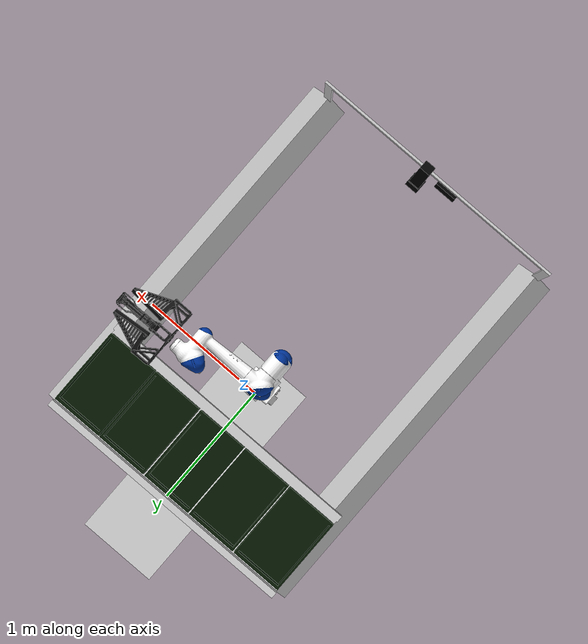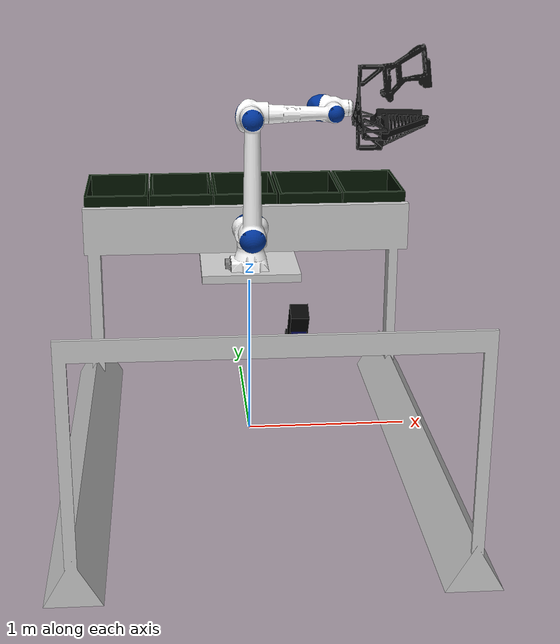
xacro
<?xml version="1.0" ?>
<robot name="test_stand" xmlns:xacro="http://ros.org/wiki/xacro">
  <xacro:include filename="$(find test_stand)/urdf/test_stand_macro.xacro" />
  <xacro:include filename="$(find yaskawa_hc10)/urdf/hc10_macro.xacro" />
  <xacro:include filename="$(find gripper)/urdf/gripper_macro.xacro" />
  <xacro:include filename="$(find depth_camera)/urdf/depth_camera_macro.xacro" />
  <xacro:include filename="$(find daheng_camera)/urdf/daheng_macro.xacro" />

  <!-- Joint controller -->
  <gazebo>
		<plugin name="gazebo_ros_control" filename="libgazebo_ros_control.so"/>
  </gazebo>

  <xacro:test_stand prefix=""/>
  <link name="world"/>
  <joint name="stand_fixed" type="fixed">
    <parent link="world"/>
    <child link="test_stand_link"/>
  </joint>

  <xacro:motoman_hc10 prefix=""/>
  <joint name="robot_fixed" type="fixed">
    <parent link="robot_base_link"/>
    <child link="base_link"/>
    <origin xyz="0 -0.7 0" rpy="0 0 0" />
  </joint>

  <xacro:gripper prefix=""/>
  <joint name="gripper_top_fixed" type="fixed">
    <parent link="link_6_t"/>
    <child link="frame_top_link"/>
    <origin xyz="0 0 -0.16" rpy="0 0 0" />
  </joint>

  <xacro:depth_camera prefix=""/>
  <joint name="camera_fixed" type="fixed">
    <parent link="test_stand_link"/>
    <child link="depth_camera_link"/>
    <origin xyz="-0.1 -1.95 1.35" rpy="3.1415 2.2 -1.5708" />
  </joint>

  <xacro:daheng/>
  <joint name="daheng_camera_fixed" type="fixed">
    <parent link="test_stand_link"/>
    <child link="daheng_camera_link"/>
    <origin xyz="0.1 -1.95 1.36" rpy="1 0 3.1415" />
  </joint>

</robot>

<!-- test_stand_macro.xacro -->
<robot xmlns:xacro="http://ros.org/wiki/xacro">
  <xacro:macro name="test_stand" params="prefix">
    <xacro:include filename="$(find test_stand)/urdf/test_stand.gazebo" />

    <!-- link list -->
    <link name="${prefix}test_stand_link">
      <visual>
        <geometry>
          <mesh filename="package://test_stand/meshes/test_stand.dae"/>
        </geometry>
      </visual>
      <collision>
        <geometry>
          <mesh filename="package://test_stand/meshes/test_stand.dae"/>
        </geometry>
      </collision>
      <inertial>
        <mass value="100" />
        <origin xyz="0 0 0" rpy="0 0 0"/>
        <inertia
        ixx="1.0" ixy="0.0" ixz="0.0"
        iyy="1.0" iyz="0.0"
        izz="1.0"/>
      </inertial>
    </link>
    <link name="${prefix}robot_base_link">
      <visual>
        <geometry>
          <mesh filename="package://test_stand/meshes/robot_base.dae"/>
        </geometry>
      </visual>
      <collision>
        <geometry>
          <mesh filename="package://test_stand/meshes/robot_base.dae"/>
        </geometry>
      </collision>
      <inertial>
        <mass value="1" />
        <origin xyz="0 0 0" rpy="0 0 0"/>
        <inertia
        ixx="1.0" ixy="0.0" ixz="0.0"
        iyy="1.0" iyz="0.0"
        izz="1.0"/>
      </inertial>
    </link>
    <!-- end of link list -->

    <xacro:property name="joint_d" value="1" />
    <xacro:property name="joint_eff" value="1000" />
    <xacro:property name="joint_vel" value="20" />
    <xacro:property name="joint_f" value="10" />

    <!-- joint list -->
    <joint name="${prefix}robot_base_joint" type="prismatic">
      <parent link="${prefix}test_stand_link"/>
      <child link="${prefix}robot_base_link"/>
      <origin xyz="0 0.61995 1.0791" rpy="0 0 0" />
      <axis xyz="1 0 0" />
      <limit lower="-0.733" upper="0.733" effort="${joint_eff}" velocity="${joint_vel}"/>
      <dynamics damping="${joint_d}" friction="${joint_f}" />
    </joint>
    <!-- end of joint list -->

    <!-- joint controller list -->
    <xacro:simple_transmission name="${prefix}robot_base_joint" interface="hardware_interface/EffortJointInterface" />
    <!-- end of joint controller list -->

  </xacro:macro>
</robot>

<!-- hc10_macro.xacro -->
<robot xmlns:xacro="http://ros.org/wiki/xacro">
  <xacro:macro name="motoman_hc10" params="prefix">
    <xacro:include filename="$(find yaskawa_hc10)/urdf/common_materials.xacro"/>
    <xacro:include filename="$(find yaskawa_hc10)/urdf/hc10.gazebo" />

    <!-- link list -->
    <link name="${prefix}base_link">
      <visual>
        <geometry>
          <mesh filename="package://motoman_hc10_support/meshes/hc10/visual/base_link.dae"/>
        </geometry>
        <xacro:material_yaskawa_blue/>
      </visual>
      <collision>
        <geometry>
          <mesh filename="package://motoman_hc10_support/meshes/hc10/collision/base_link.stl"/>
        </geometry>
      </collision>
      <inertial>
        <mass value="8" />
        <origin xyz="0 0 0" rpy="0 0 0"/>
        <inertia
        ixx="1.0" ixy="0.0" ixz="0.0"
        iyy="1.0" iyz="0.0"
        izz="1.0"/>
      </inertial>
    </link>
    <link name="${prefix}link_1_s">
      <visual>
        <geometry>
          <mesh filename="package://motoman_hc10_support/meshes/hc10/visual/link_1_s.dae"/>
        </geometry>
        <xacro:material_yaskawa_blue/>
      </visual>
      <collision>
        <geometry>
          <mesh filename="package://motoman_hc10_support/meshes/hc10/collision/link_1_s.stl"/>
        </geometry>
      </collision>
      <inertial>
        <mass value="14" />
        <origin xyz="0 0 0" rpy="0 0 0"/>
        <inertia
        ixx="1.0" ixy="0.0" ixz="0.0"
        iyy="1.0" iyz="0.0"
        izz="1.0"/>
      </inertial>
    </link>
    <link name="${prefix}link_2_l">
      <visual>
        <geometry>
          <mesh filename="package://motoman_hc10_support/meshes/hc10/visual/link_2_l.dae"/>
        </geometry>
        <xacro:material_yaskawa_blue/>
      </visual>
      <collision>
        <geometry>
          <mesh filename="package://motoman_hc10_support/meshes/hc10/collision/link_2_l.stl"/>
        </geometry>
      </collision>
      <inertial>
        <mass value="15" />
        <origin xyz="0 0 0" rpy="0 0 0"/>
        <inertia
        ixx="1.0" ixy="0.0" ixz="0.0"
        iyy="1.0" iyz="0.0"
        izz="1.0"/>
      </inertial>
    </link>
    <link name="${prefix}link_3_u">
      <visual>
        <geometry>
          <mesh filename="package://motoman_hc10_support/meshes/hc10/visual/link_3_u.dae"/>
        </geometry>
        <xacro:material_yaskawa_blue/>
      </visual>
      <collision>
        <geometry>
          <mesh filename="package://motoman_hc10_support/meshes/hc10/collision/link_3_u.stl"/>
        </geometry>
      </collision>
      <inertial>
        <mass value="8" />
        <origin xyz="0 0 0" rpy="0 0 0"/>
        <inertia
        ixx="1.0" ixy="0.0" ixz="0.0"
        iyy="1.0" iyz="0.0"
        izz="1.0"/>
      </inertial>
    </link>
    <link name="${prefix}link_4_r">
      <visual>
        <geometry>
          <mesh filename="package://motoman_hc10_support/meshes/hc10/visual/link_4_r.dae"/>
        </geometry>
        <xacro:material_yaskawa_blue/>
      </visual>
      <collision>
        <geometry>
          <mesh filename="package://motoman_hc10_support/meshes/hc10/collision/link_4_r.stl"/>
        </geometry>
      </collision>
      <inertial>
        <mass value="5" />
        <origin xyz="0 0 0" rpy="0 0 0"/>
        <inertia
        ixx="1.0" ixy="0.0" ixz="0.0"
        iyy="1.0" iyz="0.0"
        izz="1.0"/>
      </inertial>
    </link>
    <link name="${prefix}link_5_b">
      <visual>
        <geometry>
          <mesh filename="package://motoman_hc10_support/meshes/hc10/visual/link_5_b.dae"/>
        </geometry>
        <xacro:material_yaskawa_blue/>
      </visual>
      <collision>
        <geometry>
          <mesh filename="package://motoman_hc10_support/meshes/hc10/collision/link_5_b.stl"/>
        </geometry>
      </collision>
      <inertial>
        <mass value="6" />
        <origin xyz="0 0 0" rpy="0 0 0"/>
        <inertia
        ixx="1.0" ixy="0.0" ixz="0.0"
        iyy="1.0" iyz="0.0"
        izz="1.0"/>
      </inertial>
    </link>
    <link name="${prefix}link_6_t">
      <visual>
        <geometry>
          <mesh filename="package://motoman_hc10_support/meshes/hc10dt/visual/link_6_t.dae"/>
        </geometry>
        <xacro:material_yaskawa_blue/>
      </visual>
      <collision>
        <geometry>
          <mesh filename="package://motoman_hc10_support/meshes/hc10dt/collision/link_6_t.stl"/>
       </geometry>
      </collision>
      <inertial>
        <mass value="2" />
        <origin xyz="0 0 0" rpy="0 0 0"/>
        <inertia
        ixx="1.0" ixy="0.0" ixz="0.0"
        iyy="1.0" iyz="0.0"
        izz="1.0"/>
      </inertial>
    </link>
    <!-- end of link list -->

    <xacro:property name="joint_d" value="1" />
    <xacro:property name="joint_eff" value="10000000" />
    <xacro:property name="joint_vel" value="20" />
    <xacro:property name="joint_f" value="100" />

    <!-- joint list -->
    <joint name="${prefix}joint_1_s" type="revolute">
      <parent link="${prefix}base_link"/>
      <child link="${prefix}link_1_s"/>
      <origin xyz="0 0 0.275" rpy="0 0 0" />
      <axis xyz="0 0 1" />
      <limit lower="${radians(-180)}" upper="${radians(180)}" effort="${joint_eff}" velocity="${radians(130)}"/>
      <dynamics damping="0" friction="0" />
    </joint>
    <joint name="${prefix}joint_2_l" type="revolute">
      <parent link="${prefix}link_1_s"/>
      <child link="${prefix}link_2_l"/>
      <origin xyz="0 0 0" rpy="0 0 0" />
      <axis xyz="0 1 0" />
      <limit lower="${radians(-180)}" upper="${radians(180)}" effort="${joint_eff}" velocity="${radians(130)}"/>
      <dynamics damping="${joint_d}" friction="${joint_f}" />
    </joint>
    <joint name="${prefix}joint_3_u" type="revolute">
      <parent link="${prefix}link_2_l"/>
      <child link="${prefix}link_3_u"/>
      <origin xyz="0 0 0.700" rpy="0 ${radians(-90)} 0" />
      <axis xyz="0 -1 0" />
      <limit lower="${radians(-180)}" upper="${radians(180)}" effort="${joint_eff}" velocity="${radians(180)}"/>
      <dynamics damping="${joint_d}" friction="${joint_f}" />
    </joint>
    <joint name="${prefix}joint_4_r" type="revolute">
      <parent link="${prefix}link_3_u"/>
      <child link="${prefix}link_4_r"/>
      <origin xyz="0 0 -0.500" rpy="0 0 0" />
      <axis xyz="0 0 1" />
      <limit lower="${radians(-180)}" upper="${radians(180)}" effort="${joint_eff}" velocity="${radians(180)}"/>
      <dynamics damping="${joint_d}" friction="${joint_f}" />
    </joint>
    <joint name="${prefix}joint_5_b" type="revolute">
      <parent link="${prefix}link_4_r"/>
      <child link="${prefix}link_5_b"/>
      <origin xyz="0 0.162 0" rpy="0 0 0" />
      <axis xyz="0 -1 0" />
      <limit lower="${radians(-180)}" upper="${radians(180)}" effort="${joint_eff}" velocity="${radians(250)}"/>
      <dynamics damping="${joint_d}" friction="${joint_f}" />
    </joint>
    <joint name="${prefix}joint_6_t" type="revolute">
      <parent link="${prefix}link_5_b"/>
      <child link="${prefix}link_6_t"/>
      <origin xyz="0 0 0" rpy="0 0 0" />
      <axis xyz="0 0 1" />
      <limit lower="${radians(-180)}" upper="${radians(180)}" effort="${joint_eff}" velocity="${radians(250)}"/>
      <dynamics damping="${joint_d}" friction="${joint_f}" />
    </joint>
    <!-- end of joint list -->

    <!-- joint controller list -->
    <xacro:simple_transmission name="${prefix}joint_1_s" interface="hardware_interface/EffortJointInterface" />
    <xacro:simple_transmission name="${prefix}joint_2_l" interface="hardware_interface/EffortJointInterface" />
    <xacro:simple_transmission name="${prefix}joint_3_u" interface="hardware_interface/EffortJointInterface" />
    <xacro:simple_transmission name="${prefix}joint_4_r" interface="hardware_interface/EffortJointInterface" />
    <xacro:simple_transmission name="${prefix}joint_5_b" interface="hardware_interface/EffortJointInterface" />
    <xacro:simple_transmission name="${prefix}joint_6_t" interface="hardware_interface/EffortJointInterface" />
    <!-- end of joint controller list -->

    <!-- ROS base_link to Robot Manufacturer World Coordinates transform -->
    <link name="${prefix}base" />
    <joint name="${prefix}base_link-base" type="fixed">
      <origin xyz="0 0 0.275" rpy="0 0 0"/>
      <parent link="${prefix}base_link"/>
      <child link="${prefix}base"/>
    </joint>

    <gazebo reference="${prefix}base_link">
      <gravity>0</gravity>
    </gazebo>
    <gazebo reference="${prefix}link_1_s">
      <gravity>0</gravity>
    </gazebo>
    <gazebo reference="${prefix}link_2_l">
      <gravity>0</gravity>
    </gazebo>
    <gazebo reference="{prefix}link_3_u">
      <gravity>0</gravity>
    </gazebo>
    <gazebo reference="{prefix}link_4_r">
      <gravity>0</gravity>
    </gazebo>
    <gazebo reference="${prefix}link_5_b">
      <gravity>0</gravity>
    </gazebo>
    <gazebo reference="${prefix}link_6_t">
      <gravity>0</gravity>
    </gazebo>

  </xacro:macro>
</robot>

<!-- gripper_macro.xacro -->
<robot xmlns:xacro="http://ros.org/wiki/xacro">
  <xacro:macro name="gripper" params="prefix">
    <xacro:include filename="$(find gripper)/urdf/gripper.gazebo" />

    <!-- link list -->
    <link name="${prefix}frame_top_link">
      <visual>
        <geometry>
          <mesh filename="package://gripper/meshes/frame_top.dae"/>
        </geometry>
      </visual>
      <collision>
        <geometry>
          <mesh filename="package://gripper/meshes/frame_top.dae"/>
        </geometry>
      </collision>
      <inertial>
        <mass value="1" />
        <origin xyz="0 0 0" rpy="0 0 0"/>
        <inertia
        ixx="1.0" ixy="0.0" ixz="0.0"
        iyy="1.0" iyz="0.0"
        izz="1.0"/>
      </inertial>
    </link>

    <link name="${prefix}finger_1_link">
      <visual>
        <geometry>
          <mesh filename="package://gripper/meshes/finger.dae"/>
        </geometry>
      </visual>
      <collision>
        <geometry>
          <mesh filename="package://gripper/meshes/finger.dae"/>
        </geometry>
      </collision>
      <inertial>
        <mass value="1" />
        <origin xyz="0 0 0" rpy="0 0 0"/>
        <inertia
        ixx="1.0" ixy="0.0" ixz="0.0"
        iyy="1.0" iyz="0.0"
        izz="1.0"/>
      </inertial>
    </link>

    <link name="${prefix}finger_2_link">
      <visual>
        <geometry>
          <mesh filename="package://gripper/meshes/finger.dae"/>
        </geometry>
      </visual>
      <collision>
        <geometry>
          <mesh filename="package://gripper/meshes/finger.dae"/>
        </geometry>
      </collision>
      <inertial>
        <mass value="1" />
        <origin xyz="0 0 0" rpy="0 0 0"/>
        <inertia
        ixx="1.0" ixy="0.0" ixz="0.0"
        iyy="1.0" iyz="0.0"
        izz="1.0"/>
      </inertial>
    </link>

    <link name="${prefix}finger_3_link">
      <visual>
        <geometry>
          <mesh filename="package://gripper/meshes/finger.dae"/>
        </geometry>
      </visual>
      <collision>
        <geometry>
          <mesh filename="package://gripper/meshes/finger.dae"/>
        </geometry>
      </collision>
      <inertial>
        <mass value="1" />
        <origin xyz="0 0 0" rpy="0 0 0"/>
        <inertia
        ixx="1.0" ixy="0.0" ixz="0.0"
        iyy="1.0" iyz="0.0"
        izz="1.0"/>
      </inertial>
    </link>

    <link name="${prefix}knife_link">
      <visual>
        <geometry>
          <mesh filename="package://gripper/meshes/knife.dae"/>
        </geometry>
      </visual>
      <collision>
        <geometry>
          <mesh filename="package://gripper/meshes/knife.dae"/>
        </geometry>
      </collision>
      <inertial>
        <mass value="1" />
        <origin xyz="0 0 0" rpy="0 0 0"/>
        <inertia
        ixx="1.0" ixy="0.0" ixz="0.0"
        iyy="1.0" iyz="0.0"
        izz="1.0"/>
      </inertial>
    </link>

    <!-- end of link list -->

    <xacro:property name="joint_d" value="1" />
    <xacro:property name="joint_eff" value="10000" />
    <xacro:property name="joint_vel" value="20" />
    <xacro:property name="joint_f" value="10" />

    <!-- joint list -->
    <joint name="${prefix}finger_1_top_joint" type="revolute">
      <parent link="${prefix}frame_top_link"/>
      <child link="${prefix}finger_1_link"/>
      <origin xyz="-0.12521 0.21465 -0.13288" rpy="${radians(-5.45)} ${radians(0)} ${radians(-151)}" />
      <axis xyz="1 0 0" />
      <limit lower="${radians(-30)}" upper="${radians(10)}" effort="${joint_eff}" velocity="${joint_vel}"/>
      <dynamics damping="${joint_d}" friction="${joint_f}" />
    </joint>
    <joint name="${prefix}finger_2_top_joint" type="revolute">
      <parent link="${prefix}frame_top_link"/>
      <child link="${prefix}finger_2_link"/>
      <origin xyz="-0.24208 0 -0.13288" rpy="${radians(-5.45)} ${radians(0)} ${radians(-90)}" />
      <axis xyz="1 0 0" />
      <limit lower="${radians(-30)}" upper="${radians(10)}" effort="${joint_eff}" velocity="${joint_vel}"/>
      <dynamics damping="${joint_d}" friction="${joint_f}" />
    </joint>
    <joint name="${prefix}finger_3_top_joint" type="revolute">
      <parent link="${prefix}frame_top_link"/>
      <child link="${prefix}finger_3_link"/>
      <origin xyz="-0.12521 -0.21465 -0.13288" rpy="${radians(-5.45)} ${radians(0)} ${radians(-29)}" />
      <axis xyz="1 0 0" />
      <limit lower="${radians(-30)}" upper="${radians(10)}" effort="${joint_eff}" velocity="${joint_vel}"/>
      <dynamics damping="${joint_d}" friction="${joint_f}" />
    </joint>
    <joint name="${prefix}knife_top_joint" type="revolute">
      <parent link="${prefix}frame_top_link"/>
      <child link="${prefix}knife_link"/>
      <origin xyz="0.24033 0 -0.13496" rpy="${radians(0)} ${radians(0)} ${radians(0)}" />
      <axis xyz="0 1 0" />
      <limit lower="${radians(-10)}" upper="${radians(25)}" effort="${joint_eff}" velocity="${joint_vel}"/>
      <dynamics damping="${joint_d}" friction="${joint_f}" />
    </joint>
    <!-- end of joint list -->

    <!-- joint controller list -->
    <xacro:simple_transmission name="${prefix}finger_1_top_joint" interface="hardware_interface/EffortJointInterface" />
    <xacro:simple_transmission name="${prefix}finger_2_top_joint" interface="hardware_interface/EffortJointInterface" />
    <xacro:simple_transmission name="${prefix}finger_3_top_joint" interface="hardware_interface/EffortJointInterface" />
    <xacro:simple_transmission name="${prefix}knife_top_joint" interface="hardware_interface/EffortJointInterface" />
    <!-- end of joint controller list -->

    <gazebo reference="${prefix}finger_1_link">
      <gravity>0</gravity>
    </gazebo>
    <gazebo reference="${prefix}finger_2_link">
      <gravity>0</gravity>
    </gazebo>
    <gazebo reference="${prefix}finger_3_link">
      <gravity>0</gravity>
    </gazebo>
    <gazebo reference="{prefix}knife_link">
      <gravity>0</gravity>
    </gazebo>
    <gazebo reference="{prefix}frame_top_link">
      <gravity>0</gravity>
    </gazebo>
  </xacro:macro>
</robot>

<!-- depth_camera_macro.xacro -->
<robot xmlns:xacro="http://ros.org/wiki/xacro">
  <xacro:macro name="depth_camera" params="prefix">

    <!-- Camera Link -->
    <link name="${prefix}depth_camera_link">
      <visual>
        <geometry>
          <mesh filename="package://depth_camera/meshes/depth_camera.dae"/>
        </geometry>
      </visual>
      <collision>
        <geometry>
          <mesh filename="package://depth_camera/meshes/depth_camera.dae"/>
        </geometry>
      </collision>
      <inertial>
        <mass value="1" />
        <origin xyz="0 0 0" rpy="0 0 0"/>
        <inertia
        ixx="1.0" ixy="0.0" ixz="0.0"
        iyy="1.0" iyz="0.0"
        izz="1.0"/>
      </inertial>
    </link>

    <link name="${prefix}depth_camera_link_optical"/>

    <joint name="${prefix}depth_optical_joint" type="fixed">
      <!-- these values have to be these values otherwise the gazebo camera
          image won't be aligned properly with the frame it is supposedly
          originating from -->
      <origin xyz="0 0 0" rpy="-1.5708 0 -1.5708"/>
      <parent link="${prefix}depth_camera_link"/>
      <child link="${prefix}depth_camera_link_optical"/>
    </joint>

    <!-- Camera plugin-->
    <gazebo reference="${prefix}depth_camera_link">
      <sensor name="${prefix}depth_camera" type="depth">
        <update_rate>20</update_rate>
        <camera>
          <horizontal_fov>1</horizontal_fov>
          <vertical_fov>1</vertical_fov>
          <image>
            <width>1280</width>
            <height>1280</height>
            <format>R8G8B8</format>
          </image>
          <clip>
            <near>0.08</near>
            <far>3</far>
          </clip>
        </camera>
        <plugin name="${prefix}depth_camera_controller" filename="libgazebo_ros_openni_kinect.so">
          <baseline>0.2</baseline>
          <alwaysOn>true</alwaysOn>
          <updateRate>10</updateRate>
          <cameraName>${prefix}depth_camera</cameraName>
          <imageTopicName>/${prefix}depth_camera/color/image_raw</imageTopicName>
          <cameraInfoTopicName>/${prefix}depth_camera/color/camera_info</cameraInfoTopicName>
          <depthImageTopicName>/${prefix}depth_camera/depth/image_raw</depthImageTopicName>
          <depthImageInfoTopicName>/${prefix}depth_camera/depth/camera_info</depthImageInfoTopicName>
          <pointCloudTopicName>/${prefix}depth_camera/depth/points</pointCloudTopicName>
          <frameName>${prefix}depth_camera_link_optical</frameName>
          <pointCloudCutoff>0.0.8</pointCloudCutoff>
          <pointCloudCutoffMax>3.0</pointCloudCutoffMax>
          <distortionK1>0.0000000</distortionK1>
          <distortionK2>0.0000000</distortionK2>
          <distortionK3>0.0000000</distortionK3>
          <distortionT1>0.0000000</distortionT1>
          <distortionT2>0.0000000</distortionT2>
          <CxPrime>0</CxPrime>
          <Cx>0</Cx>
          <Cy>0</Cy>
          <focalLength>0</focalLength>
          <hackBaseline>0</hackBaseline>
        </plugin>
      </sensor>
    </gazebo>

  </xacro:macro>
</robot>

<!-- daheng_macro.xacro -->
<robot xmlns:xacro="http://ros.org/wiki/xacro">
  <xacro:macro name="daheng">

    <!-- Camera Link -->
    <link name="daheng_camera_link">
      <visual>
        <geometry>
          <mesh filename="package://daheng_camera/meshes/daheng_camera.dae"/>
        </geometry>
      </visual>
      <collision>
        <geometry>
          <mesh filename="package://daheng_camera/meshes/daheng_camera.dae"/>
        </geometry>
      </collision>
      <inertial>
        <mass value="1" />
        <origin xyz="0 0 0" rpy="0 0 0"/>
        <inertia
        ixx="1.0" ixy="0.0" ixz="0.0"
        iyy="1.0" iyz="0.0"
        izz="1.0"/>
      </inertial>
    </link>

    <link name="daheng_camera_link_optical"/>

    <joint name="daheng_optical_joint" type="fixed">
      <!-- these values have to be these values otherwise the gazebo camera
          image won't be aligned properly with the frame it is supposedly
          originating from -->
      <origin xyz="0 -0.1 0" rpy="0 0 -1.5708"/>
      <parent link="daheng_camera_link"/>
      <child link="daheng_camera_link_optical"/>
    </joint>

    <!-- Camera plugin-->
    <gazebo reference="daheng_camera_link_optical">
      <sensor type="camera" name="camera">
        <update_rate>30.0</update_rate>
        <camera name="head">
          <horizontal_fov>1.18</horizontal_fov>
          <image>
            <width>800</width>
            <height>600</height>
            <format>R8G8B8</format>
          </image>
          <clip>
            <near>0.02</near>
            <far>300</far>
          </clip>
          <noise>
            <type>gaussian</type>
            <!-- Noise is sampled independently per pixel on each frame.
                That pixel's noise value is added to each of its color
                channels, which at that point lie in the range [0,1]. -->
            <mean>0.0</mean>
            <stddev>0.007</stddev>
          </noise>
        </camera>
        <plugin name="daheng_camera_controller" filename="libgazebo_ros_camera.so">
          <alwaysOn>true</alwaysOn>
          <updateRate>0.0</updateRate>
          <cameraName>daheng_camera</cameraName>
          <imageTopicName>image_raw</imageTopicName>
          <cameraInfoTopicName>daheng_camera_info</cameraInfoTopicName>
          <frameName>daheng_camera_link</frameName>
          <hackBaseline>0.07</hackBaseline>
          <distortionK1>0.0</distortionK1>
          <distortionK2>0.0</distortionK2>
          <distortionK3>0.0</distortionK3>
          <distortionT1>0.0</distortionT1>
          <distortionT2>0.0</distortionT2>
        </plugin>
      </sensor>
    </gazebo>

  </xacro:macro>
</robot>
